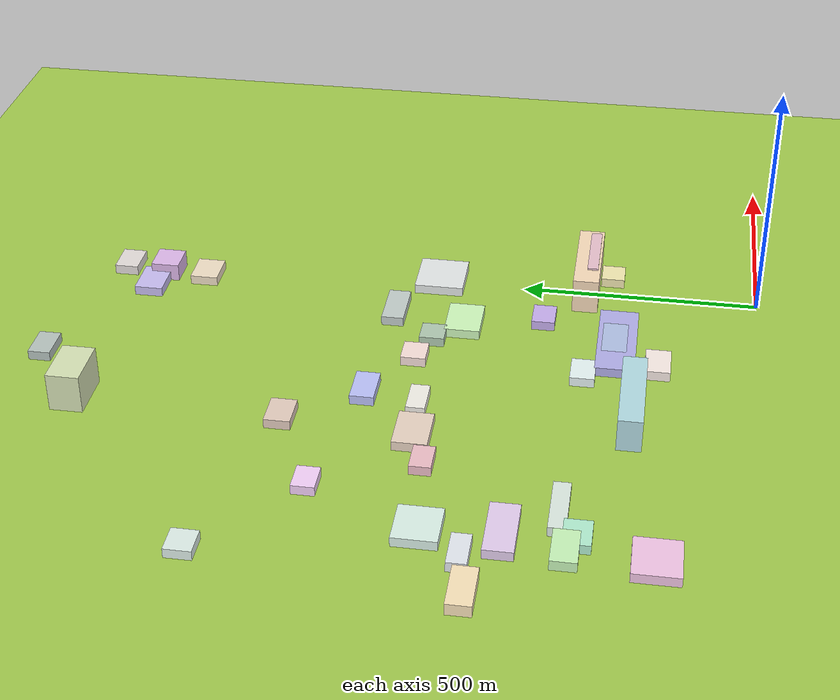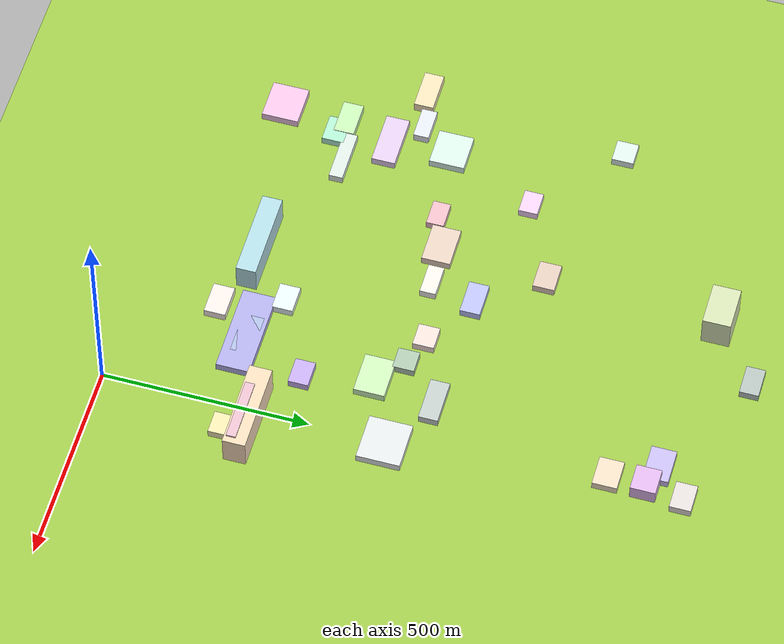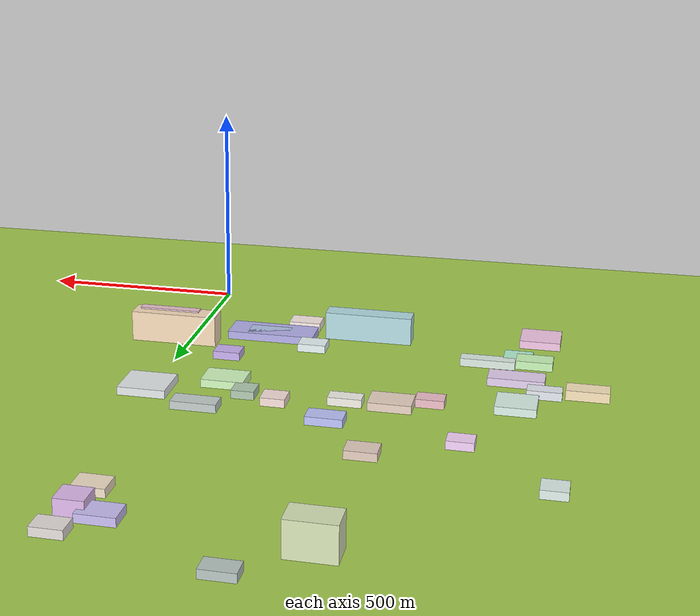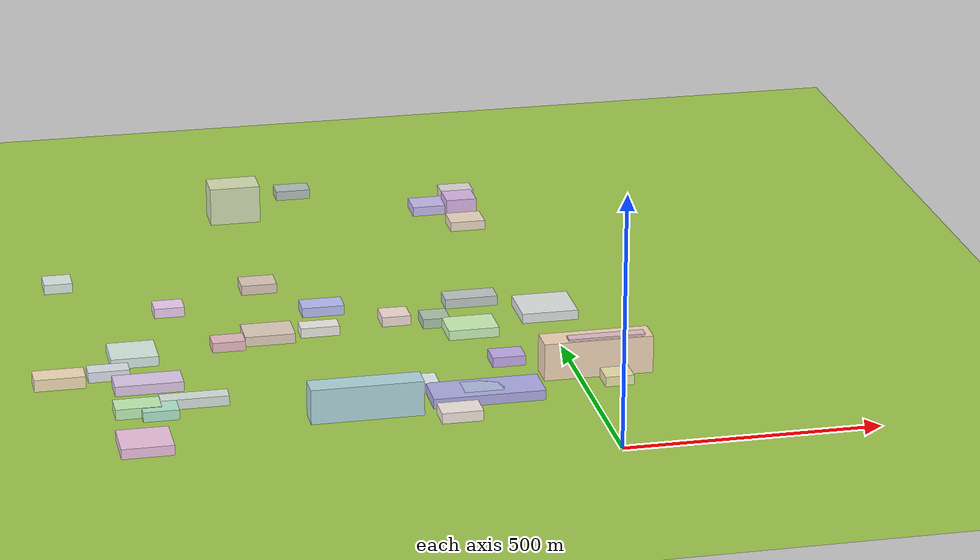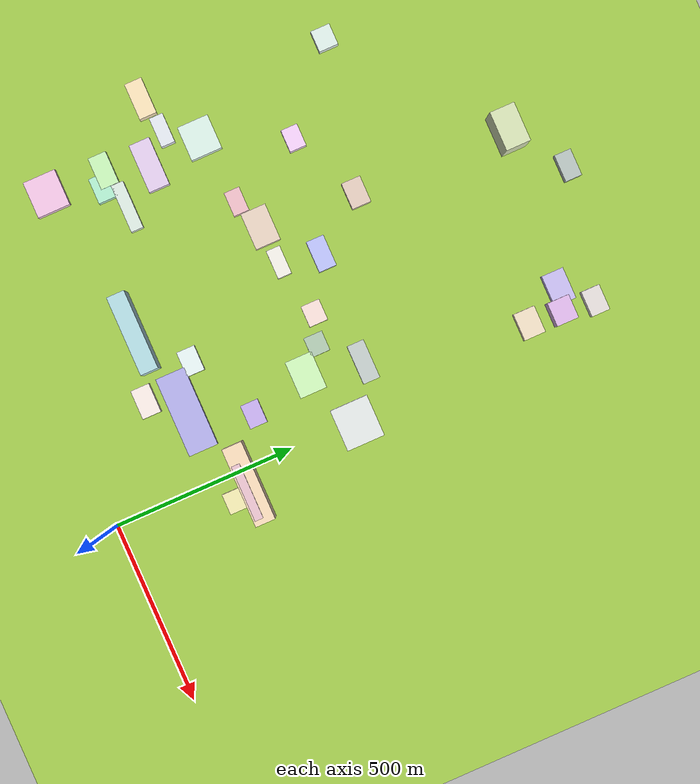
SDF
<sdf version="1.9">
 <world name="city_map">
  <model name="ground_plane">
   <static>1</static>
   <link name="link">
    <collision name="collision">
     <geometry><plane><normal>0 0 1</normal><size>11000 11000</size></plane></geometry>
    </collision>
    <visual name="visual">
     <geometry><plane><normal>0 0 1</normal><size>11000 11000</size></plane></geometry>
     <material>
      <ambient>0.551 0.712 0.210 1</ambient>
      <diffuse>0.651 0.812 0.310 1</diffuse>
      <specular>0.1 0.1 0.05 1</specular>
     </material>
    </visual>
   </link>
  </model>
  <model name="building_650503282">
   <static>1</static>
   <pose>-197.70097903242996 289.0582878527943 10.0 0 0 0</pose>
   <link name="link">
    <collision name="collision">
     <geometry><box><size>218.599247450957 80.96340000049196 20</size></box></geometry>
    </collision>
    <visual name="visual">
     <cast_shadows>false</cast_shadows>
     <geometry><box><size>218.599247450957 80.96340000049196 20</size></box></geometry>
     <material>
      <ambient>0.615 0.602 0.835 1</ambient>
      <diffuse>0.715 0.702 0.935 1</diffuse>
      <specular>0.214 0.211 0.281 1</specular>
      <emissive>0.01 0.01 0.01 1</emissive>
     </material>
    </visual>
   </link>
  </model>
  <model name="building_850108599">
   <static>1</static>
   <pose>8.22411977540731 683.5040945919393 10.0 0 0 0</pose>
   <link name="link">
    <collision name="collision">
     <geometry><box><size>114.2036889446974 104.40659999998303 20</size></box></geometry>
    </collision>
    <visual name="visual">
     <cast_shadows>false</cast_shadows>
     <geometry><box><size>114.2036889446974 104.40659999998303 20</size></box></geometry>
     <material>
      <ambient>0.812 0.830 0.828 1</ambient>
      <diffuse>0.912 0.930 0.928 1</diffuse>
      <specular>0.274 0.279 0.279 1</specular>
      <emissive>0.01 0.01 0.01 1</emissive>
     </material>
    </visual>
   </link>
  </model>
  <model name="building_621517900">
   <static>1</static>
   <pose>36.582944917012604 364.9090646787625 37.92677866184973 0 0 0</pose>
   <link name="link">
    <collision name="collision">
     <geometry><box><size>216.20578489941903 54.7007999996012 75.85355732369946</size></box></geometry>
    </collision>
    <visual name="visual">
     <cast_shadows>false</cast_shadows>
     <geometry><box><size>216.20578489941903 54.7007999996012 75.85355732369946</size></box></geometry>
     <material>
      <ambient>0.891 0.778 0.649 1</ambient>
      <diffuse>0.991 0.878 0.749 1</diffuse>
      <specular>0.297 0.264 0.225 1</specular>
      <emissive>0.01 0.01 0.01 1</emissive>
     </material>
    </visual>
   </link>
  </model>
  <model name="building_620004550">
   <static>1</static>
   <pose>-438.2095188444483 248.72259103736633 34.79113156224775 0 0 0</pose>
   <link name="link">
    <collision name="collision">
     <geometry><box><size>217.37897272771366 48.839999999728434 69.5822631244955</size></box></geometry>
    </collision>
    <visual name="visual">
     <cast_shadows>false</cast_shadows>
     <geometry><box><size>217.37897272771366 48.839999999728434 69.5822631244955</size></box></geometry>
     <material>
      <ambient>0.618 0.781 0.809 1</ambient>
      <diffuse>0.718 0.881 0.909 1</diffuse>
      <specular>0.215 0.264 0.273 1</specular>
      <emissive>0.01 0.01 0.01 1</emissive>
     </material>
    </visual>
   </link>
  </model>
  <model name="building_280758628">
   <static>1</static>
   <pose>-864.6855583571909 184.51892044038277 10.0 0 0 0</pose>
   <link name="link">
    <collision name="collision">
     <geometry><box><size>99.3782999995858 89.60453861601717 20</size></box></geometry>
    </collision>
    <visual name="visual">
     <cast_shadows>false</cast_shadows>
     <geometry><box><size>99.3782999995858 89.60453861601717 20</size></box></geometry>
     <material>
      <ambient>0.874 0.695 0.822 1</ambient>
      <diffuse>0.974 0.795 0.922 1</diffuse>
      <specular>0.292 0.238 0.277 1</specular>
      <emissive>0.01 0.01 0.01 1</emissive>
     </material>
    </visual>
   </link>
  </model>
  <model name="building_677346697">
   <static>1</static>
   <pose>-837.0780825298165 607.962978790376 10.0 0 0 0</pose>
   <link name="link">
    <collision name="collision">
     <geometry><box><size>93.81720000006055 85.82790798468571 20</size></box></geometry>
    </collision>
    <visual name="visual">
     <cast_shadows>false</cast_shadows>
     <geometry><box><size>93.81720000006055 85.82790798468571 20</size></box></geometry>
     <material>
      <ambient>0.778 0.867 0.829 1</ambient>
      <diffuse>0.878 0.967 0.929 1</diffuse>
      <specular>0.264 0.290 0.279 1</specular>
      <emissive>0.01 0.01 0.01 1</emissive>
     </material>
    </visual>
   </link>
  </model>
  <model name="building_338590302">
   <static>1</static>
   <pose>-825.3217959764997 459.39697465322524 10.0 0 0 0</pose>
   <link name="link">
    <collision name="collision">
     <geometry><box><size>132.7782000002813 57.317213501545645 20</size></box></geometry>
    </collision>
    <visual name="visual">
     <cast_shadows>false</cast_shadows>
     <geometry><box><size>132.7782000002813 57.317213501545645 20</size></box></geometry>
     <material>
      <ambient>0.813 0.729 0.856 1</ambient>
      <diffuse>0.913 0.829 0.956 1</diffuse>
      <specular>0.274 0.249 0.287 1</specular>
      <emissive>0.01 0.01 0.01 1</emissive>
     </material>
    </visual>
   </link>
  </model>
  <model name="building_646350319">
   <static>1</static>
   <pose>-160.33227664515522 611.7361090613775 10.0 0 0 0</pose>
   <link name="link">
    <collision name="collision">
     <geometry><box><size>102.13086300774411 74.32560000021482 20</size></box></geometry>
    </collision>
    <visual name="visual">
     <cast_shadows>false</cast_shadows>
     <geometry><box><size>102.13086300774411 74.32560000021482 20</size></box></geometry>
     <material>
      <ambient>0.732 0.894 0.656 1</ambient>
      <diffuse>0.832 0.994 0.756 1</diffuse>
      <specular>0.250 0.298 0.227 1</specular>
      <emissive>0.01 0.01 0.01 1</emissive>
     </material>
    </visual>
   </link>
  </model>
  <model name="building_609131794">
   <static>1</static>
   <pose>-529.172191640175 1344.8473050526209 40.450110605401775 0 0 0</pose>
   <link name="link">
    <collision name="collision">
     <geometry><box><size>106.67988024549216 67.47689999983919 80.90022121080355</size></box></geometry>
    </collision>
    <visual name="visual">
     <cast_shadows>false</cast_shadows>
     <geometry><box><size>106.67988024549216 67.47689999983919 80.90022121080355</size></box></geometry>
     <material>
      <ambient>0.762 0.808 0.630 1</ambient>
      <diffuse>0.862 0.908 0.730 1</diffuse>
      <specular>0.259 0.272 0.219 1</specular>
      <emissive>0.01 0.01 0.01 1</emissive>
     </material>
    </visual>
   </link>
  </model>
  <model name="building_200797346">
   <static>1</static>
   <pose>-560.9246236980725 659.5684310489341 10.0 0 0 0</pose>
   <link name="link">
    <collision name="collision">
     <geometry><box><size>100.4347812845311 69.4415999999265 20</size></box></geometry>
    </collision>
    <visual name="visual">
     <cast_shadows>false</cast_shadows>
     <geometry><box><size>100.4347812845311 69.4415999999265 20</size></box></geometry>
     <material>
      <ambient>0.829 0.746 0.678 1</ambient>
      <diffuse>0.929 0.846 0.778 1</diffuse>
      <specular>0.279 0.254 0.234 1</specular>
      <emissive>0.01 0.01 0.01 1</emissive>
     </material>
    </visual>
   </link>
  </model>
  <model name="building_737669142">
   <static>1</static>
   <pose>-190.35647843325498 294.0537480117231 10.0 0 0 0</pose>
   <link name="link">
    <collision name="collision">
     <geometry><box><size>104.04175330373859 51.592800000349825 20</size></box></geometry>
    </collision>
    <visual name="visual">
     <cast_shadows>false</cast_shadows>
     <geometry><box><size>104.04175330373859 51.592800000349825 20</size></box></geometry>
     <material>
      <ambient>0.610 0.672 0.817 1</ambient>
      <diffuse>0.710 0.772 0.917 1</diffuse>
      <specular>0.213 0.232 0.275 1</specular>
      <emissive>0.01 0.01 0.01 1</emissive>
     </material>
    </visual>
   </link>
  </model>
  <model name="building_1002594">
   <static>1</static>
   <pose>-103.58128312471399 1306.071145482142 10.0 0 0 0</pose>
   <link name="link">
    <collision name="collision">
     <geometry><box><size>86.5133999998875 60.11627116011009 20</size></box></geometry>
    </collision>
    <visual name="visual">
     <cast_shadows>false</cast_shadows>
     <geometry><box><size>86.5133999998875 60.11627116011009 20</size></box></geometry>
     <material>
      <ambient>0.702 0.658 0.866 1</ambient>
      <diffuse>0.802 0.758 0.966 1</diffuse>
      <specular>0.241 0.227 0.290 1</specular>
      <emissive>0.01 0.01 0.01 1</emissive>
     </material>
    </visual>
   </link>
  </model>
  <model name="building_795615353">
   <static>1</static>
   <pose>-131.05565945959157 762.6205203981855 10.0 0 0 0</pose>
   <link name="link">
    <collision name="collision">
     <geometry><box><size>107.65890000013201 46.589736990310996 20</size></box></geometry>
    </collision>
    <visual name="visual">
     <cast_shadows>false</cast_shadows>
     <geometry><box><size>107.65890000013201 46.589736990310996 20</size></box></geometry>
     <material>
      <ambient>0.680 0.720 0.710 1</ambient>
      <diffuse>0.780 0.820 0.810 1</diffuse>
      <specular>0.234 0.246 0.243 1</specular>
      <emissive>0.01 0.01 0.01 1</emissive>
     </material>
    </visual>
   </link>
  </model>
  <model name="building_415259670">
   <static>1</static>
   <pose>-991.2178312668838 508.44070828146545 12.0 0 0 0</pose>
   <link name="link">
    <collision name="collision">
     <geometry><box><size>99.30290739169388 47.59679999939692 24.0</size></box></geometry>
    </collision>
    <visual name="visual">
     <cast_shadows>false</cast_shadows>
     <geometry><box><size>99.30290739169388 47.59679999939692 24.0</size></box></geometry>
     <material>
      <ambient>0.900 0.812 0.651 1</ambient>
      <diffuse>1.000 0.912 0.751 1</diffuse>
      <specular>0.300 0.274 0.225 1</specular>
      <emissive>0.01 0.01 0.01 1</emissive>
     </material>
    </visual>
   </link>
  </model>
  <model name="building_444633016">
   <static>1</static>
   <pose>-749.1485161072367 363.10441660658404 10.0 0 0 0</pose>
   <link name="link">
    <collision name="collision">
     <geometry><box><size>131.58839731735782 33.73289999985474 20</size></box></geometry>
    </collision>
    <visual name="visual">
     <cast_shadows>false</cast_shadows>
     <geometry><box><size>131.58839731735782 33.73289999985474 20</size></box></geometry>
     <material>
      <ambient>0.783 0.839 0.806 1</ambient>
      <diffuse>0.883 0.939 0.906 1</diffuse>
      <specular>0.265 0.282 0.272 1</specular>
      <emissive>0.01 0.01 0.01 1</emissive>
     </material>
    </visual>
   </link>
  </model>
  <model name="building_616303042">
   <static>1</static>
   <pose>-859.7818641550538 344.61705407747564 10.5 0 0 0</pose>
   <link name="link">
    <collision name="collision">
     <geometry><box><size>87.92310000058734 49.835538229730986 21.0</size></box></geometry>
    </collision>
    <visual name="visual">
     <cast_shadows>false</cast_shadows>
     <geometry><box><size>87.92310000058734 49.835538229730986 21.0</size></box></geometry>
     <material>
      <ambient>0.703 0.883 0.644 1</ambient>
      <diffuse>0.803 0.983 0.744 1</diffuse>
      <specular>0.241 0.295 0.223 1</specular>
      <emissive>0.01 0.01 0.01 1</emissive>
     </material>
    </visual>
   </link>
  </model>
  <model name="building_722651957">
   <static>1</static>
   <pose>-48.638463635082 1198.368982302291 10.0 0 0 0</pose>
   <link name="link">
    <collision name="collision">
     <geometry><box><size>74.1224607238232 59.06310000010251 20</size></box></geometry>
    </collision>
    <visual name="visual">
     <cast_shadows>false</cast_shadows>
     <geometry><box><size>74.1224607238232 59.06310000010251 20</size></box></geometry>
     <material>
      <ambient>0.863 0.793 0.692 1</ambient>
      <diffuse>0.963 0.893 0.792 1</diffuse>
      <specular>0.289 0.268 0.238 1</specular>
      <emissive>0.01 0.01 0.01 1</emissive>
     </material>
    </visual>
   </link>
  </model>
  <model name="building_236173837">
   <static>1</static>
   <pose>-433.219670718251 775.967206259003 10.0 0 0 0</pose>
   <link name="link">
    <collision name="collision">
     <geometry><box><size>85.73640000027183 48.83175571979365 20</size></box></geometry>
    </collision>
    <visual name="visual">
     <cast_shadows>false</cast_shadows>
     <geometry><box><size>85.73640000027183 48.83175571979365 20</size></box></geometry>
     <material>
      <ambient>0.654 0.678 0.899 1</ambient>
      <diffuse>0.754 0.778 0.999 1</diffuse>
      <specular>0.226 0.233 0.300 1</specular>
      <emissive>0.01 0.01 0.01 1</emissive>
     </material>
    </visual>
   </link>
  </model>
  <model name="building_196875030">
   <static>1</static>
   <pose>-265.6258999949501 202.80183737804586 10.5 0 0 0</pose>
   <link name="link">
    <collision name="collision">
     <geometry><box><size>80.01989999971926 51.78217161218745 21.0</size></box></geometry>
    </collision>
    <visual name="visual">
     <cast_shadows>false</cast_shadows>
     <geometry><box><size>80.01989999971926 51.78217161218745 21.0</size></box></geometry>
     <material>
      <ambient>0.897 0.843 0.820 1</ambient>
      <diffuse>0.997 0.943 0.920 1</diffuse>
      <specular>0.299 0.283 0.276 1</specular>
      <emissive>0.01 0.01 0.01 1</emissive>
     </material>
    </visual>
   </link>
  </model>
  <model name="building_407030125">
   <static>1</static>
   <pose>-44.190243703753495 1287.6782170956726 18.775882623421772 0 0 0</pose>
   <link name="link">
    <collision name="collision">
     <geometry><box><size>65.1570000003332 60.06258066070376 37.551765246843544</size></box></geometry>
    </collision>
    <visual name="visual">
     <cast_shadows>false</cast_shadows>
     <geometry><box><size>65.1570000003332 60.06258066070376 37.551765246843544</size></box></geometry>
     <material>
      <ambient>0.792 0.638 0.839 1</ambient>
      <diffuse>0.892 0.738 0.939 1</diffuse>
      <specular>0.267 0.221 0.282 1</specular>
      <emissive>0.01 0.01 0.01 1</emissive>
     </material>
    </visual>
   </link>
  </model>
  <model name="building_462718231">
   <static>1</static>
   <pose>-541.8465539970447 923.1674125651554 10.0 0 0 0</pose>
   <link name="link">
    <collision name="collision">
     <geometry><box><size>72.76246823192109 52.625099999794145 20</size></box></geometry>
    </collision>
    <visual name="visual">
     <cast_shadows>false</cast_shadows>
     <geometry><box><size>72.76246823192109 52.625099999794145 20</size></box></geometry>
     <material>
      <ambient>0.813 0.721 0.664 1</ambient>
      <diffuse>0.913 0.821 0.764 1</diffuse>
      <specular>0.274 0.246 0.229 1</specular>
      <emissive>0.01 0.01 0.01 1</emissive>
     </material>
    </visual>
   </link>
  </model>
  <model name="building_309206128">
   <static>1</static>
   <pose>-819.5163000471609 325.7943398231801 10.0 0 0 0</pose>
   <link name="link">
    <collision name="collision">
     <geometry><box><size>69.21959999969829 53.185559967231804 20</size></box></geometry>
    </collision>
    <visual name="visual">
     <cast_shadows>false</cast_shadows>
     <geometry><box><size>69.21959999969829 53.185559967231804 20</size></box></geometry>
     <material>
      <ambient>0.614 0.855 0.735 1</ambient>
      <diffuse>0.714 0.955 0.835 1</diffuse>
      <specular>0.214 0.286 0.251 1</specular>
      <emissive>0.01 0.01 0.01 1</emissive>
     </material>
    </visual>
   </link>
  </model>
  <model name="building_57066318">
   <static>1</static>
   <pose>-32.92383743086277 1379.1492248048305 10.5 0 0 0</pose>
   <link name="link">
    <collision name="collision">
     <geometry><box><size>70.39620000004021 50.89858364767123 21.0</size></box></geometry>
    </collision>
    <visual name="visual">
     <cast_shadows>false</cast_shadows>
     <geometry><box><size>70.39620000004021 50.89858364767123 21.0</size></box></geometry>
     <material>
      <ambient>0.813 0.783 0.777 1</ambient>
      <diffuse>0.913 0.883 0.877 1</diffuse>
      <specular>0.274 0.265 0.263 1</specular>
      <emissive>0.01 0.01 0.01 1</emissive>
     </material>
    </visual>
   </link>
  </model>
  <model name="building_204671231">
   <static>1</static>
   <pose>53.74821569696129 353.9445710008376 39.92660827745251 0 0 0</pose>
   <link name="link">
    <collision name="collision">
     <geometry><box><size>151.71489212656624 23.043600000342224 79.85321655490502</size></box></geometry>
    </collision>
    <visual name="visual">
     <cast_shadows>false</cast_shadows>
     <geometry><box><size>151.71489212656624 23.043600000342224 79.85321655490502</size></box></geometry>
     <material>
      <ambient>0.830 0.675 0.722 1</ambient>
      <diffuse>0.930 0.775 0.822 1</diffuse>
      <specular>0.279 0.232 0.246 1</specular>
      <emissive>0.01 0.01 0.01 1</emissive>
     </material>
    </visual>
   </link>
  </model>
  <model name="building_105714103">
   <static>1</static>
   <pose>-314.58631479931546 351.50145961392144 10.0 0 0 0</pose>
   <link name="link">
    <collision name="collision">
     <geometry><box><size>69.02953508911519 50.105399999530675 20</size></box></geometry>
    </collision>
    <visual name="visual">
     <cast_shadows>false</cast_shadows>
     <geometry><box><size>69.02953508911519 50.105399999530675 20</size></box></geometry>
     <material>
      <ambient>0.825 0.880 0.877 1</ambient>
      <diffuse>0.925 0.980 0.977 1</diffuse>
      <specular>0.278 0.294 0.293 1</specular>
      <emissive>0.01 0.01 0.01 1</emissive>
     </material>
    </visual>
   </link>
  </model>
  <model name="building_113661069">
   <static>1</static>
   <pose>-384.1476341995569 1456.36085811015 10.0 0 0 0</pose>
   <link name="link">
    <collision name="collision">
     <geometry><box><size>74.33670000034454 45.779666176717654 20</size></box></geometry>
    </collision>
    <visual name="visual">
     <cast_shadows>false</cast_shadows>
     <geometry><box><size>74.33670000034454 45.779666176717654 20</size></box></geometry>
     <material>
      <ambient>0.634 0.684 0.666 1</ambient>
      <diffuse>0.734 0.784 0.766 1</diffuse>
      <specular>0.220 0.235 0.230 1</specular>
      <emissive>0.01 0.01 0.01 1</emissive>
     </material>
    </visual>
   </link>
  </model>
  <model name="building_926951617">
   <static>1</static>
   <pose>-122.2026512158804 446.7812152572777 10.0 0 0 0</pose>
   <link name="link">
    <collision name="collision">
     <geometry><box><size>65.62320000026034 48.40264655021443 20</size></box></geometry>
    </collision>
    <visual name="visual">
     <cast_shadows>false</cast_shadows>
     <geometry><box><size>65.62320000026034 48.40264655021443 20</size></box></geometry>
     <material>
      <ambient>0.697 0.602 0.855 1</ambient>
      <diffuse>0.797 0.702 0.955 1</diffuse>
      <specular>0.239 0.211 0.287 1</specular>
      <emissive>0.01 0.01 0.01 1</emissive>
     </material>
    </visual>
   </link>
  </model>
  <model name="building_448565580">
   <static>1</static>
   <pose>-943.6704368661443 1009.9509015341552 10.0 0 0 0</pose>
   <link name="link">
    <collision name="collision">
     <geometry><box><size>57.98640000013933 52.86079426280743 20</size></box></geometry>
    </collision>
    <visual name="visual">
     <cast_shadows>false</cast_shadows>
     <geometry><box><size>57.98640000013933 52.86079426280743 20</size></box></geometry>
     <material>
      <ambient>0.794 0.858 0.835 1</ambient>
      <diffuse>0.894 0.958 0.935 1</diffuse>
      <specular>0.268 0.287 0.281 1</specular>
      <emissive>0.01 0.01 0.01 1</emissive>
     </material>
    </visual>
   </link>
  </model>
  <model name="building_795326369">
   <static>1</static>
   <pose>-894.3169225828805 526.3750732496884 10.5 0 0 0</pose>
   <link name="link">
    <collision name="collision">
     <geometry><box><size>80.69700000053359 37.805764641574136 21.0</size></box></geometry>
    </collision>
    <visual name="visual">
     <cast_shadows>false</cast_shadows>
     <geometry><box><size>80.69700000053359 37.805764641574136 21.0</size></box></geometry>
     <material>
      <ambient>0.813 0.832 0.863 1</ambient>
      <diffuse>0.913 0.932 0.963 1</diffuse>
      <specular>0.274 0.280 0.289 1</specular>
      <emissive>0.01 0.01 0.01 1</emissive>
     </material>
    </visual>
   </link>
  </model>
  <model name="building_626781411">
   <static>1</static>
   <pose>-457.3636916873213 665.8487726308057 10.0 0 0 0</pose>
   <link name="link">
    <collision name="collision">
     <geometry><box><size>78.25499999960073 38.412479189552954 20</size></box></geometry>
    </collision>
    <visual name="visual">
     <cast_shadows>false</cast_shadows>
     <geometry><box><size>78.25499999960073 38.412479189552954 20</size></box></geometry>
     <material>
      <ambient>0.874 0.861 0.830 1</ambient>
      <diffuse>0.974 0.961 0.930 1</diffuse>
      <specular>0.292 0.288 0.279 1</specular>
      <emissive>0.01 0.01 0.01 1</emissive>
     </material>
    </visual>
   </link>
  </model>
  <model name="building_693699590">
   <static>1</static>
   <pose>-298.8056948957155 696.8098505811238 10.0 0 0 0</pose>
   <link name="link">
    <collision name="collision">
     <geometry><box><size>58.19730000023782 51.37171060183184 20</size></box></geometry>
    </collision>
    <visual name="visual">
     <cast_shadows>false</cast_shadows>
     <geometry><box><size>58.19730000023782 51.37171060183184 20</size></box></geometry>
     <material>
      <ambient>0.895 0.800 0.776 1</ambient>
      <diffuse>0.995 0.900 0.876 1</diffuse>
      <specular>0.299 0.270 0.263 1</specular>
      <emissive>0.01 0.01 0.01 1</emissive>
     </material>
    </visual>
   </link>
  </model>
  <model name="building_97695785">
   <static>1</static>
   <pose>-222.25534274194405 669.8831793888527 10.0 0 0 0</pose>
   <link name="link">
    <collision name="collision">
     <geometry><box><size>54.434399999642835 51.79074666244154 20</size></box></geometry>
    </collision>
    <visual name="visual">
     <cast_shadows>false</cast_shadows>
     <geometry><box><size>54.434399999642835 51.79074666244154 20</size></box></geometry>
     <material>
      <ambient>0.608 0.705 0.610 1</ambient>
      <diffuse>0.708 0.805 0.710 1</diffuse>
      <specular>0.212 0.242 0.213 1</specular>
      <emissive>0.01 0.01 0.01 1</emissive>
     </material>
    </visual>
   </link>
  </model>
  <model name="building_466561772">
   <static>1</static>
   <pose>-646.0574393650587 628.8795868774481 10.0 0 0 0</pose>
   <link name="link">
    <collision name="collision">
     <geometry><box><size>65.82300000022911 42.788998141400704 20</size></box></geometry>
    </collision>
    <visual name="visual">
     <cast_shadows>false</cast_shadows>
     <geometry><box><size>65.82300000022911 42.788998141400704 20</size></box></geometry>
     <material>
      <ambient>0.853 0.663 0.700 1</ambient>
      <diffuse>0.953 0.763 0.800 1</diffuse>
      <specular>0.286 0.229 0.240 1</specular>
      <emissive>0.01 0.01 0.01 1</emissive>
     </material>
    </visual>
   </link>
  </model>
  <model name="building_568709400">
   <static>1</static>
   <pose>-737.8598950183949 831.5045419558932 10.0 0 0 0</pose>
   <link name="link">
    <collision name="collision">
     <geometry><box><size>60.99450000058937 45.73153002258933 20</size></box></geometry>
    </collision>
    <visual name="visual">
     <cast_shadows>false</cast_shadows>
     <geometry><box><size>60.99450000058937 45.73153002258933 20</size></box></geometry>
     <material>
      <ambient>0.883 0.744 0.900 1</ambient>
      <diffuse>0.983 0.844 1.000 1</diffuse>
      <specular>0.295 0.253 0.300 1</specular>
      <emissive>0.01 0.01 0.01 1</emissive>
     </material>
    </visual>
   </link>
  </model>
  <model name="building_872816225">
   <static>1</static>
   <pose>65.49371477283249 310.20604660564936 10.0 0 0 0</pose>
   <link name="link">
    <collision name="collision">
     <geometry><box><size>56.42090698173261 49.38389999977488 20</size></box></geometry>
    </collision>
    <visual name="visual">
     <cast_shadows>false</cast_shadows>
     <geometry><box><size>56.42090698173261 49.38389999977488 20</size></box></geometry>
     <material>
      <ambient>0.870 0.834 0.611 1</ambient>
      <diffuse>0.970 0.934 0.711 1</diffuse>
      <specular>0.291 0.280 0.213 1</specular>
      <emissive>0.01 0.01 0.01 1</emissive>
     </material>
    </visual>
   </link>
  </model>
 </world>
</sdf>
